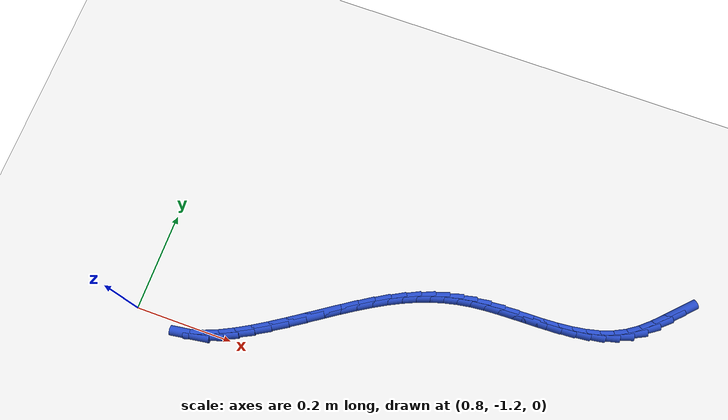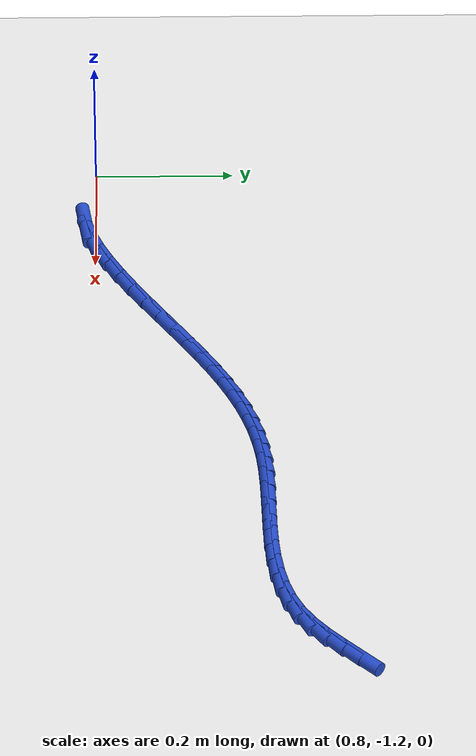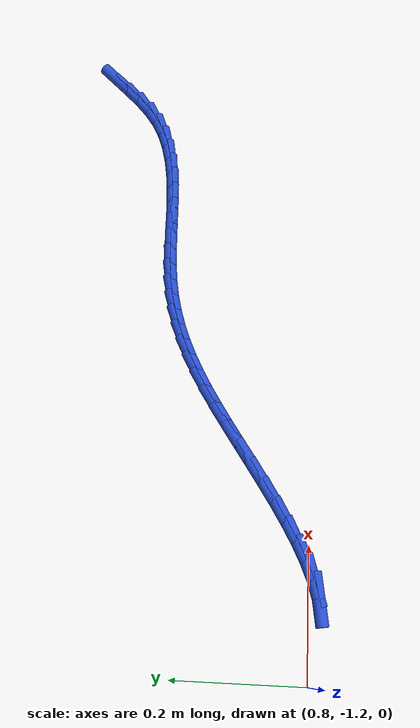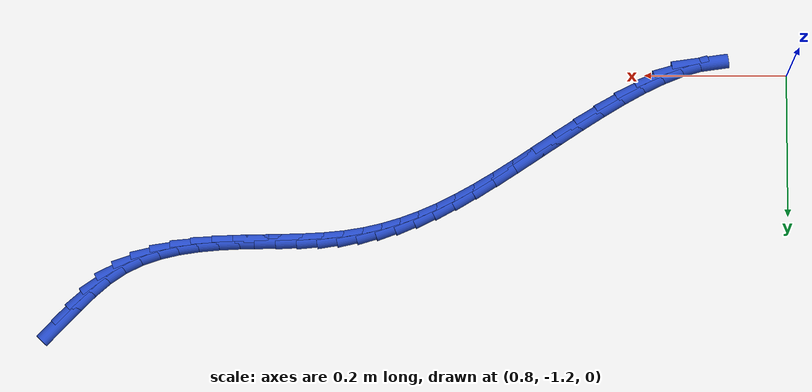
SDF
<sdf version="1.6">
 <world name="default">
  <model name="ground_plane">
   <static>1</static>
   <link name="link">
    <collision name="collision">
     <geometry><plane><normal>0 0 1</normal><size>100 100</size></plane></geometry>
     <surface><friction><ode><mu>100</mu><mu2>50</mu2></ode></friction></surface>
    </collision>
    <visual name="visual">
     <cast_shadows>0</cast_shadows>
     <geometry><plane><normal>0 0 1</normal><size>100 100</size></plane></geometry>
     <material>
      <script><uri>file://media/materials/scripts/gazebo.material</uri><name>Gazebo/WhiteGlow</name></script>
     </material>
    </visual>
   </link>
  </model>
  <model name="line">
   <link name="link_170">
    <pose>1.8127091817340784 -0.846639328593229 0.01 0 1.57 0.809497327306346</pose>
    <collision name="collision">
     <geometry><cylinder><radius>0.01</radius><length>0.08</length></cylinder></geometry>
    </collision>
    <visual name="visual">
     <material>
      <script><name>Gazebo/Blue</name><uri>file://media/materials/scripts/gazebo.material</uri></script>
     </material>
     <geometry><cylinder><radius>0.01</radius><length>0.08</length></cylinder></geometry>
    </visual>
   </link>
   <link name="link_171">
    <pose>1.7927970690376487 -0.867535066804799 0.01 0 1.57 0.7855092146083144</pose>
    <collision name="collision">
     <geometry><cylinder><radius>0.01</radius><length>0.08</length></cylinder></geometry>
    </collision>
    <visual name="visual">
     <material>
      <script><name>Gazebo/Blue</name><uri>file://media/materials/scripts/gazebo.material</uri></script>
     </material>
     <geometry><cylinder><radius>0.01</radius><length>0.08</length></cylinder></geometry>
    </visual>
   </link>
   <link name="link_172">
    <pose>1.7725831712425049 -0.8877534546542402 0.01 0 1.57 0.7185970809482664</pose>
    <collision name="collision">
     <geometry><cylinder><radius>0.01</radius><length>0.08</length></cylinder></geometry>
    </collision>
    <visual name="visual">
     <material>
      <script><name>Gazebo/Blue</name><uri>file://media/materials/scripts/gazebo.material</uri></script>
     </material>
     <geometry><cylinder><radius>0.01</radius><length>0.08</length></cylinder></geometry>
    </visual>
   </link>
   <link name="link_173">
    <pose>1.7514946255762154 -0.906197261277408 0.01 0 1.57 0.6048930164998843</pose>
    <collision name="collision">
     <geometry><cylinder><radius>0.01</radius><length>0.08</length></cylinder></geometry>
    </collision>
    <visual name="visual">
     <material>
      <script><name>Gazebo/Blue</name><uri>file://media/materials/scripts/gazebo.material</uri></script>
     </material>
     <geometry><cylinder><radius>0.01</radius><length>0.08</length></cylinder></geometry>
    </visual>
   </link>
   <link name="link_174">
    <pose>1.728961727228074 -0.9217752487747548 0.01 0 1.57 0.4642091191670701</pose>
    <collision name="collision">
     <geometry><cylinder><radius>0.01</radius><length>0.08</length></cylinder></geometry>
    </collision>
    <visual name="visual">
     <material>
      <script><name>Gazebo/Blue</name><uri>file://media/materials/scripts/gazebo.material</uri></script>
     </material>
     <geometry><cylinder><radius>0.01</radius><length>0.08</length></cylinder></geometry>
    </visual>
   </link>
   <link name="link_175">
    <pose>1.704694029232087 -0.9339261357569604 0.01 0 1.57 0.33912745248342563</pose>
    <collision name="collision">
     <geometry><cylinder><radius>0.01</radius><length>0.08</length></cylinder></geometry>
    </collision>
    <visual name="visual">
     <material>
      <script><name>Gazebo/Blue</name><uri>file://media/materials/scripts/gazebo.material</uri></script>
     </material>
     <geometry><cylinder><radius>0.01</radius><length>0.08</length></cylinder></geometry>
    </visual>
   </link>
   <link name="link_176">
    <pose>1.6788954106564493 -0.9430267391010767 0.01 0 1.57 0.23642448528337745</pose>
    <collision name="collision">
     <geometry><cylinder><radius>0.01</radius><length>0.08</length></cylinder></geometry>
    </collision>
    <visual name="visual">
     <material>
      <script><name>Gazebo/Blue</name><uri>file://media/materials/scripts/gazebo.material</uri></script>
     </material>
     <geometry><cylinder><radius>0.01</radius><length>0.08</length></cylinder></geometry>
    </visual>
   </link>
   <link name="link_177">
    <pose>1.6518203702900556 -0.9495499383410771 0.01 0 1.57 0.15598759739462567</pose>
    <collision name="collision">
     <geometry><cylinder><radius>0.01</radius><length>0.08</length></cylinder></geometry>
    </collision>
    <visual name="visual">
     <material>
      <script><name>Gazebo/Blue</name><uri>file://media/materials/scripts/gazebo.material</uri></script>
     </material>
     <geometry><cylinder><radius>0.01</radius><length>0.08</length></cylinder></geometry>
    </visual>
   </link>
   <link name="link_178">
    <pose>1.6237234069217978 -0.9539686130109357 0.01 0 1.57 0.09625759563262541</pose>
    <collision name="collision">
     <geometry><cylinder><radius>0.01</radius><length>0.08</length></cylinder></geometry>
    </collision>
    <visual name="visual">
     <material>
      <script><name>Gazebo/Blue</name><uri>file://media/materials/scripts/gazebo.material</uri></script>
     </material>
     <geometry><cylinder><radius>0.01</radius><length>0.08</length></cylinder></geometry>
    </visual>
   </link>
   <link name="link_179">
    <pose>1.5948590193405694 -0.9567556426446252 0.01 0 1.57 0.05536925172739846</pose>
    <collision name="collision">
     <geometry><cylinder><radius>0.01</radius><length>0.08</length></cylinder></geometry>
    </collision>
    <visual name="visual">
     <material>
      <script><name>Gazebo/Blue</name><uri>file://media/materials/scripts/gazebo.material</uri></script>
     </material>
     <geometry><cylinder><radius>0.01</radius><length>0.08</length></cylinder></geometry>
    </visual>
   </link>
   <link name="link_180">
    <pose>1.5654817063352622 -0.9583839067761193 0.01 0 1.57 0.03178799437071599</pose>
    <collision name="collision">
     <geometry><cylinder><radius>0.01</radius><length>0.08</length></cylinder></geometry>
    </collision>
    <visual name="visual">
     <material>
      <script><name>Gazebo/Blue</name><uri>file://media/materials/scripts/gazebo.material</uri></script>
     </material>
     <geometry><cylinder><radius>0.01</radius><length>0.08</length></cylinder></geometry>
    </visual>
   </link>
   <link name="link_181">
    <pose>1.5358459666947708 -0.9593262849393912 0.01 0 1.57 0.024602993900997978</pose>
    <collision name="collision">
     <geometry><cylinder><radius>0.01</radius><length>0.08</length></cylinder></geometry>
    </collision>
    <visual name="visual">
     <material>
      <script><name>Gazebo/Blue</name><uri>file://media/materials/scripts/gazebo.material</uri></script>
     </material>
     <geometry><cylinder><radius>0.01</radius><length>0.08</length></cylinder></geometry>
    </visual>
   </link>
   <link name="link_182">
    <pose>1.5062062992079874 -0.9600556566684146 0.01 0 1.57 0.03364756285622791</pose>
    <collision name="collision">
     <geometry><cylinder><radius>0.01</radius><length>0.08</length></cylinder></geometry>
    </collision>
    <visual name="visual">
     <material>
      <script><name>Gazebo/Blue</name><uri>file://media/materials/scripts/gazebo.material</uri></script>
     </material>
     <geometry><cylinder><radius>0.01</radius><length>0.08</length></cylinder></geometry>
    </visual>
   </link>
   <link name="link_183">
    <pose>1.4768172026638036 -0.9610449014971628 0.01 0 1.57 0.05954715626988785</pose>
    <collision name="collision">
     <geometry><cylinder><radius>0.01</radius><length>0.08</length></cylinder></geometry>
    </collision>
    <visual name="visual">
     <material>
      <script><name>Gazebo/Blue</name><uri>file://media/materials/scripts/gazebo.material</uri></script>
     </material>
     <geometry><cylinder><radius>0.01</radius><length>0.08</length></cylinder></geometry>
    </visual>
   </link>
   <link name="link_184">
    <pose>1.4479331758511147 -0.9627668989596093 0.01 0 1.57 0.1037219398183709</pose>
    <collision name="collision">
     <geometry><cylinder><radius>0.01</radius><length>0.08</length></cylinder></geometry>
    </collision>
    <visual name="visual">
     <material>
      <script><name>Gazebo/Blue</name><uri>file://media/materials/scripts/gazebo.material</uri></script>
     </material>
     <geometry><cylinder><radius>0.01</radius><length>0.08</length></cylinder></geometry>
    </visual>
   </link>
   <link name="link_185">
    <pose>1.419808717551374 -0.9656945285831904 0.01 0 1.57 0.1650194288272855</pose>
    <collision name="collision">
     <geometry><cylinder><radius>0.01</radius><length>0.08</length></cylinder></geometry>
    </collision>
    <visual name="visual">
     <material>
      <script><name>Gazebo/Blue</name><uri>file://media/materials/scripts/gazebo.material</uri></script>
     </material>
     <geometry><cylinder><radius>0.01</radius><length>0.08</length></cylinder></geometry>
    </visual>
   </link>
   <link name="link_186">
    <pose>1.3926109554998871 -0.9702238760841331 0.01 0 1.57 0.2311182065560606</pose>
    <collision name="collision">
     <geometry><cylinder><radius>0.01</radius><length>0.08</length></cylinder></geometry>
    </collision>
    <visual name="visual">
     <material>
      <script><name>Gazebo/Blue</name><uri>file://media/materials/scripts/gazebo.material</uri></script>
     </material>
     <geometry><cylinder><radius>0.01</radius><length>0.08</length></cylinder></geometry>
    </visual>
   </link>
   <link name="link_187">
    <pose>1.3661621350785536 -0.9764478966622843 0.01 0 1.57 0.2966800638760866</pose>
    <collision name="collision">
     <geometry><cylinder><radius>0.01</radius><length>0.08</length></cylinder></geometry>
    </collision>
    <visual name="visual">
     <material>
      <script><name>Gazebo/Blue</name><uri>file://media/materials/scripts/gazebo.material</uri></script>
     </material>
     <geometry><cylinder><radius>0.01</radius><length>0.08</length></cylinder></geometry>
    </visual>
   </link>
   <link name="link_188">
    <pose>1.3401994164300324 -0.9843847607908909 0.01 0 1.57 0.35930129935824334</pose>
    <collision name="collision">
     <geometry><cylinder><radius>0.01</radius><length>0.08</length></cylinder></geometry>
    </collision>
    <visual name="visual">
     <material>
      <script><name>Gazebo/Blue</name><uri>file://media/materials/scripts/gazebo.material</uri></script>
     </material>
     <geometry><cylinder><radius>0.01</radius><length>0.08</length></cylinder></geometry>
    </visual>
   </link>
   <link name="link_189">
    <pose>1.3144599596969813 -0.9940526389432023 0.01 0 1.57 0.41691859916545626</pose>
    <collision name="collision">
     <geometry><cylinder><radius>0.01</radius><length>0.08</length></cylinder></geometry>
    </collision>
    <visual name="visual">
     <material>
      <script><name>Gazebo/Blue</name><uri>file://media/materials/scripts/gazebo.material</uri></script>
     </material>
     <geometry><cylinder><radius>0.01</radius><length>0.08</length></cylinder></geometry>
    </visual>
   </link>
   <link name="link_190">
    <pose>1.2886809250220597 -1.0054697015924654 0.01 0 1.57 0.4680453547816679</pose>
    <collision name="collision">
     <geometry><cylinder><radius>0.01</radius><length>0.08</length></cylinder></geometry>
    </collision>
    <visual name="visual">
     <material>
      <script><name>Gazebo/Blue</name><uri>file://media/materials/scripts/gazebo.material</uri></script>
     </material>
     <geometry><cylinder><radius>0.01</radius><length>0.08</length></cylinder></geometry>
    </visual>
   </link>
   <link name="link_191">
    <pose>1.2625994725479248 -1.018654119211929 0.01 0 1.57 0.511852453409058</pose>
    <collision name="collision">
     <geometry><cylinder><radius>0.01</radius><length>0.08</length></cylinder></geometry>
    </collision>
    <visual name="visual">
     <material>
      <script><name>Gazebo/Blue</name><uri>file://media/materials/scripts/gazebo.material</uri></script>
     </material>
     <geometry><cylinder><radius>0.01</radius><length>0.08</length></cylinder></geometry>
    </visual>
   </link>
   <link name="link_192">
    <pose>1.235952762417237 -1.0336240622748407 0.01 0 1.57 0.5480724658325594</pose>
    <collision name="collision">
     <geometry><cylinder><radius>0.01</radius><length>0.08</length></cylinder></geometry>
    </collision>
    <visual name="visual">
     <material>
      <script><name>Gazebo/Blue</name><uri>file://media/materials/scripts/gazebo.material</uri></script>
     </material>
     <geometry><cylinder><radius>0.01</radius><length>0.08</length></cylinder></geometry>
    </visual>
   </link>
   <link name="link_193">
    <pose>1.2084806153663379 -1.0503946061454996 0.01 0 1.57 0.5746632470346679</pose>
    <collision name="collision">
     <geometry><cylinder><radius>0.01</radius><length>0.08</length></cylinder></geometry>
    </collision>
    <visual name="visual">
     <material>
      <script><name>Gazebo/Blue</name><uri>file://media/materials/scripts/gazebo.material</uri></script>
     </material>
     <geometry><cylinder><radius>0.01</radius><length>0.08</length></cylinder></geometry>
    </visual>
   </link>
   <link name="link_194">
    <pose>1.1801034499631446 -1.0687707339941412 0.01 0 1.57 0.589592253326322</pose>
    <collision name="collision">
     <geometry><cylinder><radius>0.01</radius><length>0.08</length></cylinder></geometry>
    </collision>
    <visual name="visual">
     <material>
      <script><name>Gazebo/Blue</name><uri>file://media/materials/scripts/gazebo.material</uri></script>
     </material>
     <geometry><cylinder><radius>0.01</radius><length>0.08</length></cylinder></geometry>
    </visual>
   </link>
   <link name="link_195">
    <pose>1.1510343802125254 -1.088216931953991 0.01 0 1.57 0.5942822679729192</pose>
    <collision name="collision">
     <geometry><cylinder><radius>0.01</radius><length>0.08</length></cylinder></geometry>
    </collision>
    <visual name="visual">
     <material>
      <script><name>Gazebo/Blue</name><uri>file://media/materials/scripts/gazebo.material</uri></script>
     </material>
     <geometry><cylinder><radius>0.01</radius><length>0.08</length></cylinder></geometry>
    </visual>
   </link>
   <link name="link_196">
    <pose>1.1215132520992956 -1.1081665884409304 0.01 0 1.57 0.5894977158706132</pose>
    <collision name="collision">
     <geometry><cylinder><radius>0.01</radius><length>0.08</length></cylinder></geometry>
    </collision>
    <visual name="visual">
     <material>
      <script><name>Gazebo/Blue</name><uri>file://media/materials/scripts/gazebo.material</uri></script>
     </material>
     <geometry><cylinder><radius>0.01</radius><length>0.08</length></cylinder></geometry>
    </visual>
   </link>
   <link name="link_197">
    <pose>1.0917799116082743 -1.1280530918708387 0.01 0 1.57 0.5751443471851126</pose>
    <collision name="collision">
     <geometry><cylinder><radius>0.01</radius><length>0.08</length></cylinder></geometry>
    </collision>
    <visual name="visual">
     <material>
      <script><name>Gazebo/Blue</name><uri>file://media/materials/scripts/gazebo.material</uri></script>
     </material>
     <geometry><cylinder><radius>0.01</radius><length>0.08</length></cylinder></geometry>
    </visual>
   </link>
   <link name="link_198">
    <pose>1.0620742047242768 -1.1473098306595981 0.01 0 1.57 0.5502871294990929</pose>
    <collision name="collision">
     <geometry><cylinder><radius>0.01</radius><length>0.08</length></cylinder></geometry>
    </collision>
    <visual name="visual">
     <material>
      <script><name>Gazebo/Blue</name><uri>file://media/materials/scripts/gazebo.material</uri></script>
     </material>
     <geometry><cylinder><radius>0.01</radius><length>0.08</length></cylinder></geometry>
    </visual>
   </link>
   <link name="link_199">
    <pose>1.0326359774321217 -1.1653701932230873 0.01 0 1.57 0.5130126538377776</pose>
    <collision name="collision">
     <geometry><cylinder><radius>0.01</radius><length>0.08</length></cylinder></geometry>
    </collision>
    <visual name="visual">
     <material>
      <script><name>Gazebo/Blue</name><uri>file://media/materials/scripts/gazebo.material</uri></script>
     </material>
     <geometry><cylinder><radius>0.01</radius><length>0.08</length></cylinder></geometry>
    </visual>
   </link>
   <link name="link_200">
    <pose>1.0037050757166253 -1.1816675679771889 0.01 0 1.57 0.4601191015535912</pose>
    <collision name="collision">
     <geometry><cylinder><radius>0.01</radius><length>0.08</length></cylinder></geometry>
    </collision>
    <visual name="visual">
     <material>
      <script><name>Gazebo/Blue</name><uri>file://media/materials/scripts/gazebo.material</uri></script>
     </material>
     <geometry><cylinder><radius>0.01</radius><length>0.08</length></cylinder></geometry>
    </visual>
   </link>
   <link name="link_201">
    <pose>0.9755213455626058 -1.1956353433377815 0.01 0 1.57 0.3866051877007135</pose>
    <collision name="collision">
     <geometry><cylinder><radius>0.01</radius><length>0.08</length></cylinder></geometry>
    </collision>
    <visual name="visual">
     <material>
      <script><name>Gazebo/Blue</name><uri>file://media/materials/scripts/gazebo.material</uri></script>
     </material>
     <geometry><cylinder><radius>0.01</radius><length>0.08</length></cylinder></geometry>
    </visual>
   </link>
   <link name="link_202">
    <pose>0.9483246329548796 -1.2067069077207475 0.01 0 1.57 0.28500743394567246</pose>
    <collision name="collision">
     <geometry><cylinder><radius>0.01</radius><length>0.08</length></cylinder></geometry>
    </collision>
    <visual name="visual">
     <material>
      <script><name>Gazebo/Blue</name><uri>file://media/materials/scripts/gazebo.material</uri></script>
     </material>
     <geometry><cylinder><radius>0.01</radius><length>0.08</length></cylinder></geometry>
    </visual>
   </link>
   <link name="link_203">
    <pose>0.9223547838782651 -1.2143156495419662 0.01 0 1.57 0.14504958623359163</pose>
    <collision name="collision">
     <geometry><cylinder><radius>0.01</radius><length>0.08</length></cylinder></geometry>
    </collision>
    <visual name="visual">
     <material>
      <script><name>Gazebo/Blue</name><uri>file://media/materials/scripts/gazebo.material</uri></script>
     </material>
     <geometry><cylinder><radius>0.01</radius><length>0.08</length></cylinder></geometry>
    </visual>
   </link>
  </model>
 </world>
</sdf>
